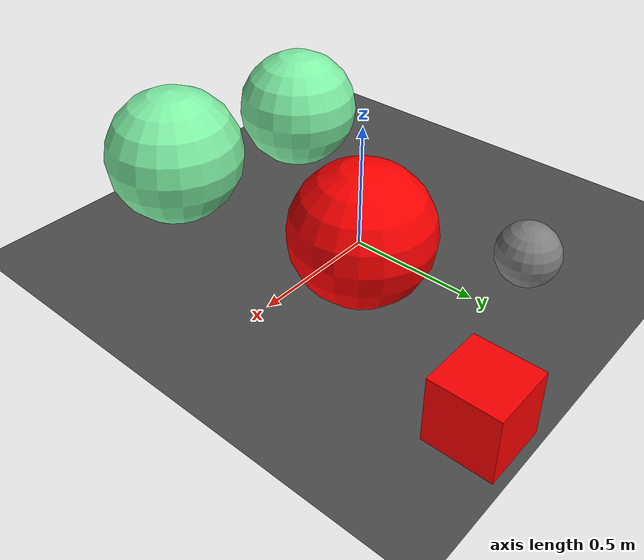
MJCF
<mujoco>
   <asset>
      <texture name="builtin_checker" builtin="checker" type="2d" rgb1="1 1 0" rgb2="0 0 1" width="200" height="200"/>
      <texture name="builtin_gradient" builtin="gradient" rgb1="0 .9 .3" rgb2="1 1 1" width="200" height="200"/>
      <texture name="builtin_flat" builtin="flat" rgb1="1 0 0" rgb2="1 0 0"  width="200" height="200"/>

      <material name="checker_mat" reflectance="0.9" texrepeat="3 3" texture="builtin_checker" texuniform="false" />
      <material name="gradient_mat" reflectance="1" texrepeat="1 1" texture="builtin_gradient" texuniform="true"/>
      <material name="flat_mat" reflectance="1" texrepeat="1 1" texture="builtin_flat" texuniform="true"/>
   </asset>

   <worldbody>
      <light diffuse=".9 .9 .9" pos="0 0 3" dir="0 0 -1"/>
     <geom type="plane" size="1 1 0.1" rgba="0.3 0.3 0.3 1"/>
<body pos="0.51 0.85 0.12">
<joint type="free"/>
 <geom type="box" size="0.12 0.12 0.12" material="flat_mat" />
</body>
<body pos="0.23 0.19 0.26">
<joint type="free"/>
 <geom type="sphere" size="0.26 0.26 0.26" material="flat_mat" />
</body>
<body pos="0.31 -0.67 0.27">
<joint type="free"/>
 <geom type="sphere" size="0.27 0.27 0.27" material="gradient_mat" />
</body>
<body pos="-0.33 -0.61 0.25">
<joint type="free"/>
 <geom type="sphere" size="0.25 0.25 0.25" material="gradient_mat" />
</body>
<body pos="-0.21 0.59 0.12">
<joint type="free"/>
 <geom type="sphere" size="0.12 0.12 0.12" material="checker_mat" />
</body><camera euler="60 0 180" fovy="60" name="camera_a" pos="0 -1.5 1"></camera>   </worldbody>
</mujoco>
